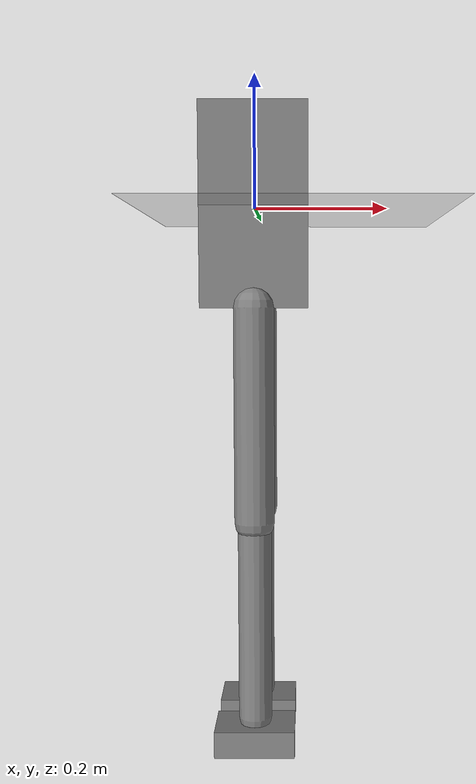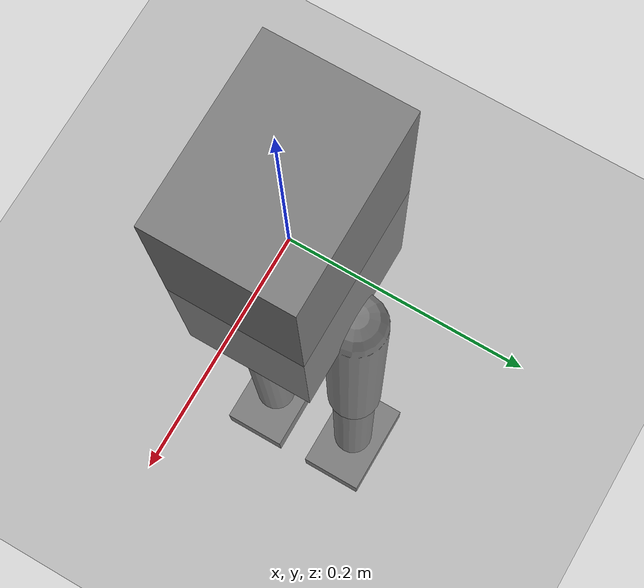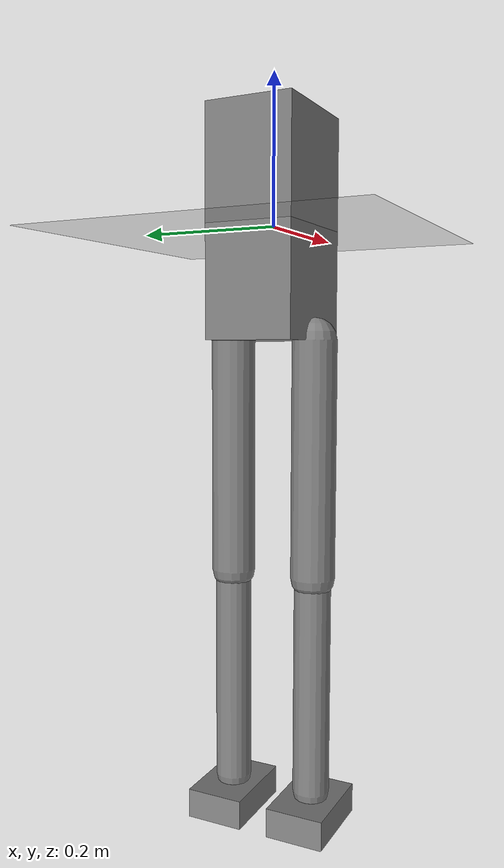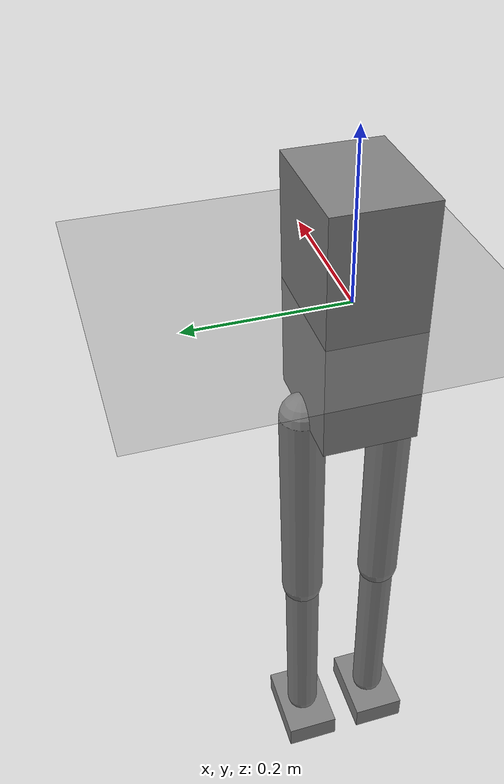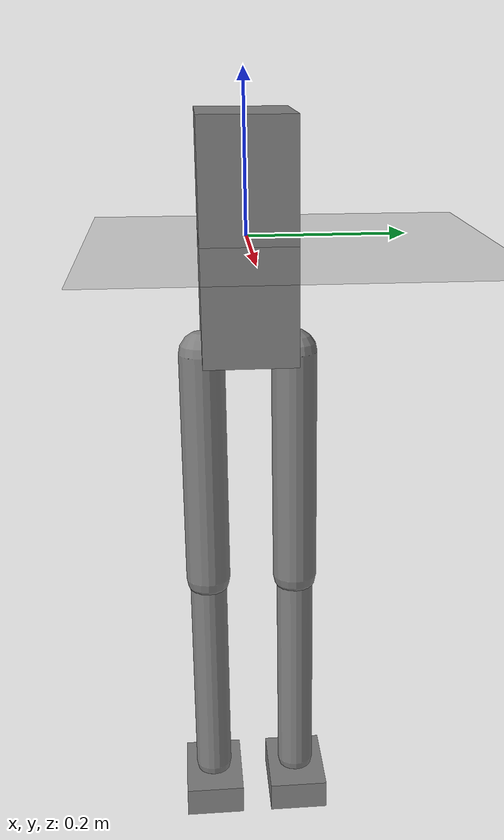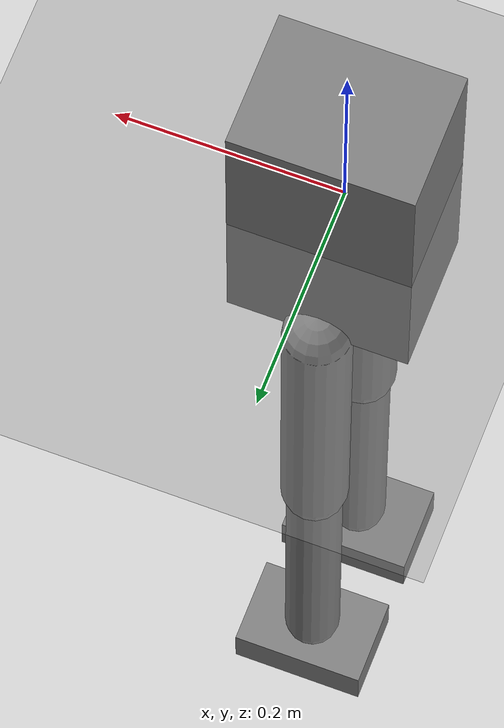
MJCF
<mujoco model="h1_stand_proxy">
  <compiler angle="radian"/>
  <option timestep="0.005" gravity="0 0 -9.81"/>
  <worldbody>
    <light name="top" pos="0 0 2" dir="0 0 -1"/>
    <geom name="floor" type="plane" size="3 3 0.1" friction="1.0"/>
    <body name="torso" pos="0 0 0">
      <joint name="torso_z" type="slide" axis="0 0 1" range="0 1.4"/>
      <joint name="torso_pitch" type="hinge" axis="0 1 0" range="-10 10"/>
      <geom name="torso_geom" type="box" size="0.08 0.06 0.15" mass="7"/>
      <body name="leg_left" pos="0 0.06 -0.15">
        <joint name="hip_left" type="hinge" axis="0 1 0" range="-1.0 1.0"/>
        <geom name="thigh_l" type="capsule" fromto="0 0 0 0 0 -0.32" size="0.03" mass="2"/>
        <body name="shank_left" pos="0 0 -0.32">
          <joint name="knee_left" type="hinge" axis="0 1 0" range="-1.4 0"/>
          <geom name="shank_l" type="capsule" fromto="0 0 0 0 0 -0.30" size="0.025" mass="1.5"/>
          <geom name="foot_l" type="box" pos="0 0 -0.33" size="0.06 0.04 0.02" mass="0.5"/>
        </body>
      </body>
      <body name="leg_right" pos="0 -0.06 -0.15">
        <joint name="hip_right" type="hinge" axis="0 1 0" range="-1.0 1.0"/>
        <geom name="thigh_r" type="capsule" fromto="0 0 0 0 0 -0.32" size="0.03" mass="2"/>
        <body name="shank_right" pos="0 0 -0.32">
          <joint name="knee_right" type="hinge" axis="0 1 0" range="-1.4 0"/>
          <geom name="shank_r" type="capsule" fromto="0 0 0 0 0 -0.30" size="0.025" mass="1.5"/>
          <geom name="foot_r" type="box" pos="0 0 -0.33" size="0.06 0.04 0.02" mass="0.5"/>
        </body>
      </body>
    </body>
  </worldbody>
  <actuator>
    <!-- Order must match action vector: [hip_l, knee_l, hip_r, knee_r, flip] -->
    <motor name="hip_left" joint="hip_left" gear="50"/>
    <motor name="knee_left" joint="knee_left" gear="50"/>
    <motor name="hip_right" joint="hip_right" gear="50"/>
    <motor name="knee_right" joint="knee_right" gear="50"/>
    <motor name="torso_pitch" joint="torso_pitch" gear="100"/>
  </actuator>
</mujoco>
